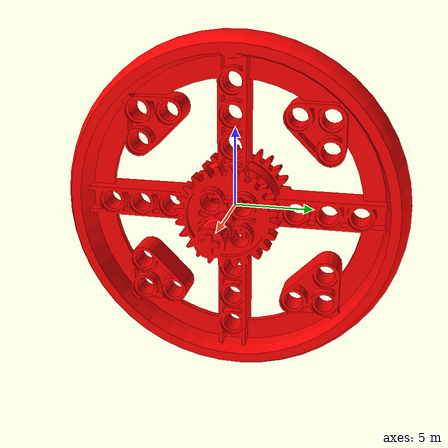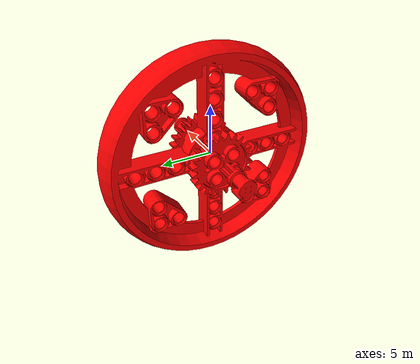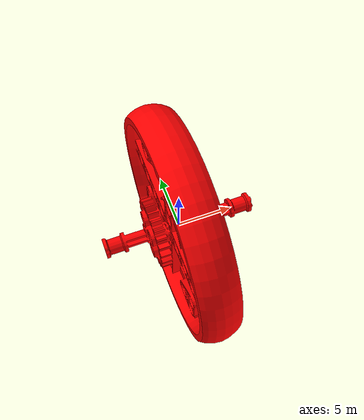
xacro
<?xml version="1.0"?>
<robot xmlns:xacro="http://www.ros.org/wiki/xacro" name="motorcycle">
    <link name="world"></link>

    <joint name="joint_name" type="fixed">
        <origin xyz="0.0 0.0 0.0" rpy="0.0 0.0 0.0"/>
        <parent link="world"/>
        <child link="base_link"/>
    </joint>

    <link name="base_link">
        <inertial>
            <origin xyz="0.0 0.0 0.0" rpy="0.0 0.0 0.0"/>
            <mass value="0.0"/>
            <inertia ixx="0.0" ixy="0.0" ixz="0.0" iyy="0.0" iyz="0.0" izz="0.0"/>
        </inertial>
        <visual name="">
            <origin xyz="0.0 0.0 0.0" rpy="0.0 0.0 0.0"/>
            <geometry>
                <mesh filename="../OBJ/Rear_wheel.obj" scale=".1 .1 .1"/>
            </geometry>
            <material name="">
                <color rgba="1.0 0.0 0.0 1.0"/>
                <texture filename=""/>
            </material>
        </visual>
        <collision>
            <origin xyz="0.0 0.0 0.0" rpy="0.0 0.0 0.0"/>
            <geometry>
                <mesh filename="../OBJ/Rear_wheel.obj" scale=".1 .1 .1"/>
            </geometry>
        </collision>
    </link>
</robot>
